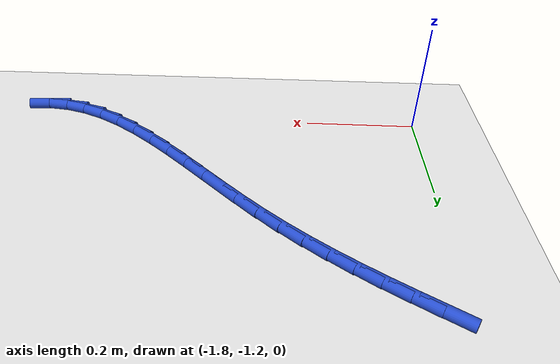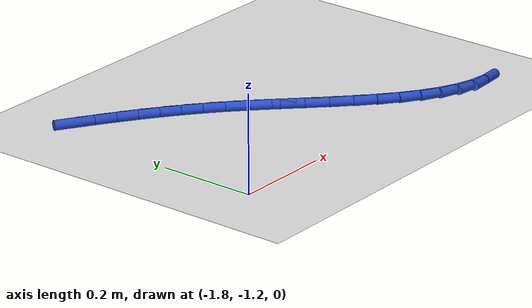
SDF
<sdf version="1.6">
 <world name="default">
  <model name="ground_plane">
   <static>1</static>
   <link name="link">
    <collision name="collision">
     <geometry><plane><normal>0 0 1</normal><size>100 100</size></plane></geometry>
     <surface><friction><ode><mu>100</mu><mu2>50</mu2></ode></friction></surface>
    </collision>
    <visual name="visual">
     <cast_shadows>0</cast_shadows>
     <geometry><plane><normal>0 0 1</normal><size>100 100</size></plane></geometry>
     <material>
      <script><uri>file://media/materials/scripts/gazebo.material</uri><name>Gazebo/WhiteGlow</name></script>
     </material>
    </visual>
   </link>
  </model>
  <model name="line">
   <link name="link_101">
    <pose>-1.7590193251489472 -0.7367513114691355 0.01 0 1.57 -0.5593771369735819</pose>
    <collision name="collision">
     <geometry><cylinder><radius>0.01</radius><length>0.08</length></cylinder></geometry>
    </collision>
    <visual name="visual">
     <material>
      <script><name>Gazebo/Blue</name><uri>file://media/materials/scripts/gazebo.material</uri></script>
     </material>
     <geometry><cylinder><radius>0.01</radius><length>0.08</length></cylinder></geometry>
    </visual>
   </link>
   <link name="link_102">
    <pose>-1.7218742086571739 -0.7600072071463344 0.01 0 1.57 -0.5753598693049308</pose>
    <collision name="collision">
     <geometry><cylinder><radius>0.01</radius><length>0.08</length></cylinder></geometry>
    </collision>
    <visual name="visual">
     <material>
      <script><name>Gazebo/Blue</name><uri>file://media/materials/scripts/gazebo.material</uri></script>
     </material>
     <geometry><cylinder><radius>0.01</radius><length>0.08</length></cylinder></geometry>
    </visual>
   </link>
   <link name="link_103">
    <pose>-1.6856289608071109 -0.783514302398262 0.01 0 1.57 -0.596595278868722</pose>
    <collision name="collision">
     <geometry><cylinder><radius>0.01</radius><length>0.08</length></cylinder></geometry>
    </collision>
    <visual name="visual">
     <material>
      <script><name>Gazebo/Blue</name><uri>file://media/materials/scripts/gazebo.material</uri></script>
     </material>
     <geometry><cylinder><radius>0.01</radius><length>0.08</length></cylinder></geometry>
    </visual>
   </link>
   <link name="link_104">
    <pose>-1.6501847361079198 -0.8075862521010914 0.01 0 1.57 -0.6223155154343581</pose>
    <collision name="collision">
     <geometry><cylinder><radius>0.01</radius><length>0.08</length></cylinder></geometry>
    </collision>
    <visual name="visual">
     <material>
      <script><name>Gazebo/Blue</name><uri>file://media/materials/scripts/gazebo.material</uri></script>
     </material>
     <geometry><cylinder><radius>0.01</radius><length>0.08</length></cylinder></geometry>
    </visual>
   </link>
   <link name="link_105">
    <pose>-1.6153866998576059 -0.8325507271599994 0.01 0 1.57 -0.6519290837687707</pose>
    <collision name="collision">
     <geometry><cylinder><radius>0.01</radius><length>0.08</length></cylinder></geometry>
    </collision>
    <visual name="visual">
     <material>
      <script><name>Gazebo/Blue</name><uri>file://media/materials/scripts/gazebo.material</uri></script>
     </material>
     <geometry><cylinder><radius>0.01</radius><length>0.08</length></cylinder></geometry>
    </visual>
   </link>
   <link name="link_106">
    <pose>-1.5810800173541715 -0.8587353984801634 0.01 0 1.57 -0.684648834313758</pose>
    <collision name="collision">
     <geometry><cylinder><radius>0.01</radius><length>0.08</length></cylinder></geometry>
    </collision>
    <visual name="visual">
     <material>
      <script><name>Gazebo/Blue</name><uri>file://media/materials/scripts/gazebo.material</uri></script>
     </material>
     <geometry><cylinder><radius>0.01</radius><length>0.08</length></cylinder></geometry>
    </visual>
   </link>
   <link name="link_107">
    <pose>-1.547109853895623 -0.8864679369667593 0.01 0 1.57 -0.719552956815251</pose>
    <collision name="collision">
     <geometry><cylinder><radius>0.01</radius><length>0.08</length></cylinder></geometry>
    </collision>
    <visual name="visual">
     <material>
      <script><name>Gazebo/Blue</name><uri>file://media/materials/scripts/gazebo.material</uri></script>
     </material>
     <geometry><cylinder><radius>0.01</radius><length>0.08</length></cylinder></geometry>
    </visual>
   </link>
   <link name="link_108">
    <pose>-1.513321374779963 -0.9160760135249642 0.01 0 1.57 -0.754762563630377</pose>
    <collision name="collision">
     <geometry><cylinder><radius>0.01</radius><length>0.08</length></cylinder></geometry>
    </collision>
    <visual name="visual">
     <material>
      <script><name>Gazebo/Blue</name><uri>file://media/materials/scripts/gazebo.material</uri></script>
     </material>
     <geometry><cylinder><radius>0.01</radius><length>0.08</length></cylinder></geometry>
    </visual>
   </link>
   <link name="link_109">
    <pose>-1.479564412704944 -0.9478255176534107 0.01 0 1.57 -0.7802685587004563</pose>
    <collision name="collision">
     <geometry><cylinder><radius>0.01</radius><length>0.08</length></cylinder></geometry>
    </collision>
    <visual name="visual">
     <material>
      <script><name>Gazebo/Blue</name><uri>file://media/materials/scripts/gazebo.material</uri></script>
     </material>
     <geometry><cylinder><radius>0.01</radius><length>0.08</length></cylinder></geometry>
    </visual>
   </link>
   <link name="link_110">
    <pose>-1.4457399945568912 -0.9813046919494169 0.01 0 1.57 -0.7915323009035544</pose>
    <collision name="collision">
     <geometry><cylinder><radius>0.01</radius><length>0.08</length></cylinder></geometry>
    </collision>
    <visual name="visual">
     <material>
      <script><name>Gazebo/Blue</name><uri>file://media/materials/scripts/gazebo.material</uri></script>
     </material>
     <geometry><cylinder><radius>0.01</radius><length>0.08</length></cylinder></geometry>
    </visual>
   </link>
   <link name="link_111">
    <pose>-1.4117807765887156 -1.0156831076169763 0.01 0 1.57 -0.7894817481803995</pose>
    <collision name="collision">
     <geometry><cylinder><radius>0.01</radius><length>0.08</length></cylinder></geometry>
    </collision>
    <visual name="visual">
     <material>
      <script><name>Gazebo/Blue</name><uri>file://media/materials/scripts/gazebo.material</uri></script>
     </material>
     <geometry><cylinder><radius>0.01</radius><length>0.08</length></cylinder></geometry>
    </visual>
   </link>
   <link name="link_112">
    <pose>-1.3776198827697343 -1.0501241447946505 0.01 0 1.57 -0.7742026512367413</pose>
    <collision name="collision">
     <geometry><cylinder><radius>0.01</radius><length>0.08</length></cylinder></geometry>
    </collision>
    <visual name="visual">
     <material>
      <script><name>Gazebo/Blue</name><uri>file://media/materials/scripts/gazebo.material</uri></script>
     </material>
     <geometry><cylinder><radius>0.01</radius><length>0.08</length></cylinder></geometry>
    </visual>
   </link>
   <link name="link_113">
    <pose>-1.3431904370692624 -1.0837911836210046 0.01 0 1.57 -0.7448875560260756</pose>
    <collision name="collision">
     <geometry><cylinder><radius>0.01</radius><length>0.08</length></cylinder></geometry>
    </collision>
    <visual name="visual">
     <material>
      <script><name>Gazebo/Blue</name><uri>file://media/materials/scripts/gazebo.material</uri></script>
     </material>
     <geometry><cylinder><radius>0.01</radius><length>0.08</length></cylinder></geometry>
    </visual>
   </link>
   <link name="link_114">
    <pose>-1.308425563456616 -1.115847604234602 0.01 0 1.57 -0.6998049718370716</pose>
    <collision name="collision">
     <geometry><cylinder><radius>0.01</radius><length>0.08</length></cylinder></geometry>
    </collision>
    <visual name="visual">
     <material>
      <script><name>Gazebo/Blue</name><uri>file://media/materials/scripts/gazebo.material</uri></script>
     </material>
     <geometry><cylinder><radius>0.01</radius><length>0.08</length></cylinder></geometry>
    </visual>
   </link>
   <link name="link_115">
    <pose>-1.2732583859011102 -1.1454567867740058 0.01 0 1.57 -0.6362433634301633</pose>
    <collision name="collision">
     <geometry><cylinder><radius>0.01</radius><length>0.08</length></cylinder></geometry>
    </collision>
    <visual name="visual">
     <material>
      <script><name>Gazebo/Blue</name><uri>file://media/materials/scripts/gazebo.material</uri></script>
     </material>
     <geometry><cylinder><radius>0.01</radius><length>0.08</length></cylinder></geometry>
    </visual>
   </link>
   <link name="link_116">
    <pose>-1.2376220283720603 -1.1717821113777807 0.01 0 1.57 -0.5505493776003146</pose>
    <collision name="collision">
     <geometry><cylinder><radius>0.01</radius><length>0.08</length></cylinder></geometry>
    </collision>
    <visual name="visual">
     <material>
      <script><name>Gazebo/Blue</name><uri>file://media/materials/scripts/gazebo.material</uri></script>
     </material>
     <geometry><cylinder><radius>0.01</radius><length>0.08</length></cylinder></geometry>
    </visual>
   </link>
   <link name="link_117">
    <pose>-1.201449614838782 -1.193986958184488 0.01 0 1.57 -0.43854400224960155</pose>
    <collision name="collision">
     <geometry><cylinder><radius>0.01</radius><length>0.08</length></cylinder></geometry>
    </collision>
    <visual name="visual">
     <material>
      <script><name>Gazebo/Blue</name><uri>file://media/materials/scripts/gazebo.material</uri></script>
     </material>
     <geometry><cylinder><radius>0.01</radius><length>0.08</length></cylinder></geometry>
    </visual>
   </link>
   <link name="link_118">
    <pose>-1.1646742692705914 -1.211234707332693 0.01 0 1.57 -0.2968500442014973</pose>
    <collision name="collision">
     <geometry><cylinder><radius>0.01</radius><length>0.08</length></cylinder></geometry>
    </collision>
    <visual name="visual">
     <material>
      <script><name>Gazebo/Blue</name><uri>file://media/materials/scripts/gazebo.material</uri></script>
     </material>
     <geometry><cylinder><radius>0.01</radius><length>0.08</length></cylinder></geometry>
    </visual>
   </link>
   <link name="link_119">
    <pose>-1.1272291156368042 -1.2226887389609589 0.01 0 1.57 -0.12566902741379501</pose>
    <collision name="collision">
     <geometry><cylinder><radius>0.01</radius><length>0.08</length></cylinder></geometry>
    </collision>
    <visual name="visual">
     <material>
      <script><name>Gazebo/Blue</name><uri>file://media/materials/scripts/gazebo.material</uri></script>
     </material>
     <geometry><cylinder><radius>0.01</radius><length>0.08</length></cylinder></geometry>
    </visual>
   </link>
   <link name="link_120">
    <pose>-1.0890472779067355 -1.2275124332078493 0.01 0 1.57 0.0645011312756557</pose>
    <collision name="collision">
     <geometry><cylinder><radius>0.01</radius><length>0.08</length></cylinder></geometry>
    </collision>
    <visual name="visual">
     <material>
      <script><name>Gazebo/Blue</name><uri>file://media/materials/scripts/gazebo.material</uri></script>
     </material>
     <geometry><cylinder><radius>0.01</radius><length>0.08</length></cylinder></geometry>
    </visual>
   </link>
  </model>
 </world>
</sdf>
